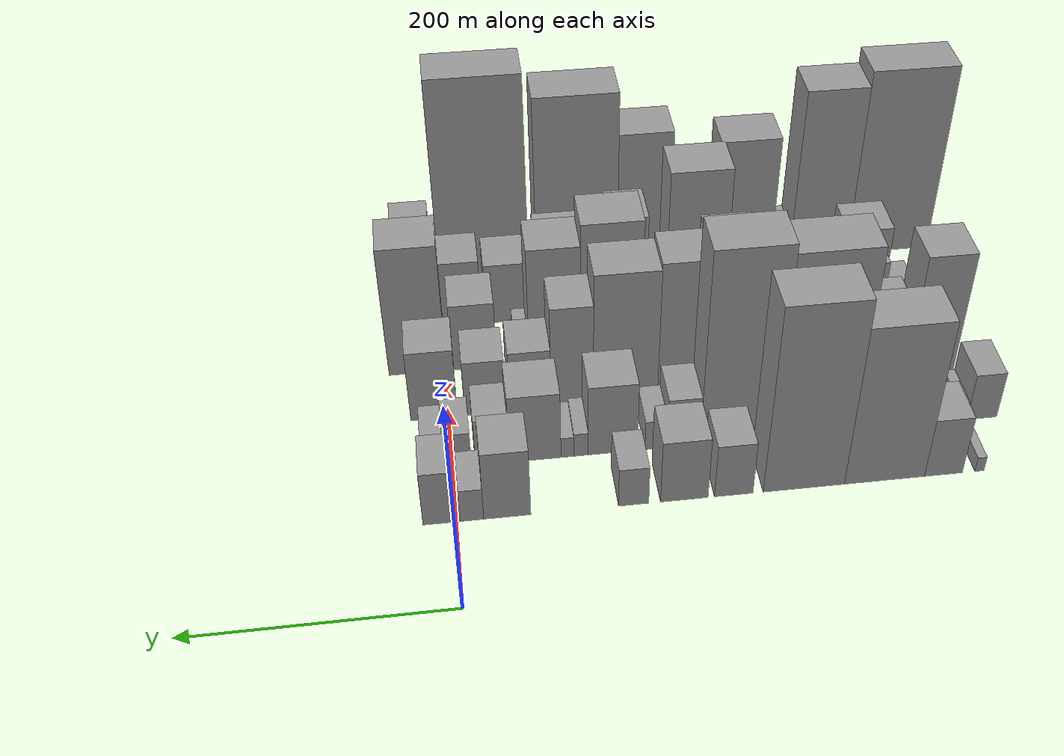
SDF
<sdf version="1.6">
 <world name="default">
  <model name="building_17">
   <static>1</static>
   <pose>100.0000 -403.8971 0 0.000000 0.000000 0.000000</pose>
   <link name="link">
    <pose>0 0 7.50 0 0 0</pose>
    <collision name="collision"><geometry><box><size>40.0000 7.2782 15.0000</size></box></geometry></collision>
    <visual name="visual">
     <cast_shadows>0</cast_shadows>
     <geometry><box><size>40.0000 7.2782 15.0000</size></box></geometry>
     <material>
      <script>
       <uri>model://grey_wall/materials/scripts</uri>
       <uri>model://grey_wall/materials/textures</uri>
       <name>vrc/grey_wall</name>
      </script>
     </material>
    </visual>
   </link>
  </model>
  <model name="building_18">
   <static>1</static>
   <pose>100.0000 -375.1844 0 0.000000 0.000000 0.000000</pose>
   <link name="link">
    <pose>0 0 30.00 0 0 0</pose>
    <collision name="collision"><geometry><box><size>40.0000 30.1471 60.0000</size></box></geometry></collision>
    <visual name="visual">
     <cast_shadows>0</cast_shadows>
     <geometry><box><size>40.0000 30.1471 60.0000</size></box></geometry>
     <material>
      <script>
       <uri>model://grey_wall/materials/scripts</uri>
       <uri>model://grey_wall/materials/textures</uri>
       <name>vrc/grey_wall</name>
      </script>
     </material>
    </visual>
   </link>
  </model>
  <model name="building_19">
   <static>1</static>
   <pose>100.0000 -328.5099 0 0.000000 0.000000 0.000000</pose>
   <link name="link">
    <pose>0 0 79.50 0 0 0</pose>
    <collision name="collision"><geometry><box><size>40.0000 63.2020 159.0000</size></box></geometry></collision>
    <visual name="visual">
     <cast_shadows>0</cast_shadows>
     <geometry><box><size>40.0000 63.2020 159.0000</size></box></geometry>
     <material>
      <script>
       <uri>model://grey_wall/materials/scripts</uri>
       <uri>model://grey_wall/materials/textures</uri>
       <name>vrc/grey_wall</name>
      </script>
     </material>
    </visual>
   </link>
  </model>
  <model name="building_20">
   <static>1</static>
   <pose>100.0000 -265.2148 0 0.000000 0.000000 0.000000</pose>
   <link name="link">
    <pose>0 0 93.00 0 0 0</pose>
    <collision name="collision"><geometry><box><size>40.0000 63.3882 186.0000</size></box></geometry></collision>
    <visual name="visual">
     <cast_shadows>0</cast_shadows>
     <geometry><box><size>40.0000 63.3882 186.0000</size></box></geometry>
     <material>
      <script>
       <uri>model://grey_wall/materials/scripts</uri>
       <uri>model://grey_wall/materials/textures</uri>
       <name>vrc/grey_wall</name>
      </script>
     </material>
    </visual>
   </link>
  </model>
  <model name="building_21">
   <static>1</static>
   <pose>100.0000 -210.6596 0 0.000000 0.000000 0.000000</pose>
   <link name="link">
    <pose>0 0 27.00 0 0 0</pose>
    <collision name="collision"><geometry><box><size>40.0000 29.7221 54.0000</size></box></geometry></collision>
    <visual name="visual">
     <cast_shadows>0</cast_shadows>
     <geometry><box><size>40.0000 29.7221 54.0000</size></box></geometry>
     <material>
      <script>
       <uri>model://grey_wall/materials/scripts</uri>
       <uri>model://grey_wall/materials/textures</uri>
       <name>vrc/grey_wall</name>
      </script>
     </material>
    </visual>
   </link>
  </model>
  <model name="building_22">
   <static>1</static>
   <pose>100.0000 -172.5500 0 0.000000 0.000000 0.000000</pose>
   <link name="link">
    <pose>0 0 31.50 0 0 0</pose>
    <collision name="collision"><geometry><box><size>40.0000 36.4971 63.0000</size></box></geometry></collision>
    <visual name="visual">
     <cast_shadows>0</cast_shadows>
     <geometry><box><size>40.0000 36.4971 63.0000</size></box></geometry>
     <material>
      <script>
       <uri>model://grey_wall/materials/scripts</uri>
       <uri>model://grey_wall/materials/textures</uri>
       <name>vrc/grey_wall</name>
      </script>
     </material>
    </visual>
   </link>
  </model>
  <model name="building_23">
   <static>1</static>
   <pose>100.0000 -133.8058 0 0.000000 0.000000 0.000000</pose>
   <link name="link">
    <pose>0 0 19.50 0 0 0</pose>
    <collision name="collision"><geometry><box><size>40.0000 22.9913 39.0000</size></box></geometry></collision>
    <visual name="visual">
     <cast_shadows>0</cast_shadows>
     <geometry><box><size>40.0000 22.9913 39.0000</size></box></geometry>
     <material>
      <script>
       <uri>model://grey_wall/materials/scripts</uri>
       <uri>model://grey_wall/materials/textures</uri>
       <name>vrc/grey_wall</name>
      </script>
     </material>
    </visual>
   </link>
  </model>
  <model name="building_24">
   <static>1</static>
   <pose>100.0000 -38.3105 0 0.000000 0.000000 0.000000</pose>
   <link name="link">
    <pose>0 0 34.50 0 0 0</pose>
    <collision name="collision"><geometry><box><size>40.0000 35.3331 69.0000</size></box></geometry></collision>
    <visual name="visual">
     <cast_shadows>0</cast_shadows>
     <geometry><box><size>40.0000 35.3331 69.0000</size></box></geometry>
     <material>
      <script>
       <uri>model://grey_wall/materials/scripts</uri>
       <uri>model://grey_wall/materials/textures</uri>
       <name>vrc/grey_wall</name>
      </script>
     </material>
    </visual>
   </link>
  </model>
  <model name="building_25">
   <static>1</static>
   <pose>100.0000 -11.7626 0 0.000000 0.000000 0.000000</pose>
   <link name="link">
    <pose>0 0 16.50 0 0 0</pose>
    <collision name="collision"><geometry><box><size>40.0000 17.7626 33.0000</size></box></geometry></collision>
    <visual name="visual">
     <cast_shadows>0</cast_shadows>
     <geometry><box><size>40.0000 17.7626 33.0000</size></box></geometry>
     <material>
      <script>
       <uri>model://grey_wall/materials/scripts</uri>
       <uri>model://grey_wall/materials/textures</uri>
       <name>vrc/grey_wall</name>
      </script>
     </material>
    </visual>
   </link>
  </model>
  <model name="building_26">
   <static>1</static>
   <pose>100.0000 10.8010 0 0.000000 0.000000 0.000000</pose>
   <link name="link">
    <pose>0 0 27.00 0 0 0</pose>
    <collision name="collision"><geometry><box><size>40.0000 27.3646 54.0000</size></box></geometry></collision>
    <visual name="visual">
     <cast_shadows>0</cast_shadows>
     <geometry><box><size>40.0000 27.3646 54.0000</size></box></geometry>
     <material>
      <script>
       <uri>model://grey_wall/materials/scripts</uri>
       <uri>model://grey_wall/materials/textures</uri>
       <name>vrc/grey_wall</name>
      </script>
     </material>
    </visual>
   </link>
  </model>
  <model name="building_65">
   <static>1</static>
   <pose>155.0000 -424.7836 0 0.000000 0.000000 0.000000</pose>
   <link name="link">
    <pose>0 0 24.00 0 0 0</pose>
    <collision name="collision"><geometry><box><size>40.0000 24.6631 48.0000</size></box></geometry></collision>
    <visual name="visual">
     <cast_shadows>0</cast_shadows>
     <geometry><box><size>40.0000 24.6631 48.0000</size></box></geometry>
     <material>
      <script>
       <uri>model://grey_wall/materials/scripts</uri>
       <uri>model://grey_wall/materials/textures</uri>
       <name>vrc/grey_wall</name>
      </script>
     </material>
    </visual>
   </link>
  </model>
  <model name="building_66">
   <static>1</static>
   <pose>155.0000 -408.0593 0 0.000000 0.000000 0.000000</pose>
   <link name="link">
    <pose>0 0 9.00 0 0 0</pose>
    <collision name="collision"><geometry><box><size>40.0000 8.7856 18.0000</size></box></geometry></collision>
    <visual name="visual">
     <cast_shadows>0</cast_shadows>
     <geometry><box><size>40.0000 8.7856 18.0000</size></box></geometry>
     <material>
      <script>
       <uri>model://grey_wall/materials/scripts</uri>
       <uri>model://grey_wall/materials/textures</uri>
       <name>vrc/grey_wall</name>
      </script>
     </material>
    </visual>
   </link>
  </model>
  <model name="building_67">
   <static>1</static>
   <pose>155.0000 -386.0575 0 0.000000 0.000000 0.000000</pose>
   <link name="link">
    <pose>0 0 15.00 0 0 0</pose>
    <collision name="collision"><geometry><box><size>40.0000 17.2179 30.0000</size></box></geometry></collision>
    <visual name="visual">
     <cast_shadows>0</cast_shadows>
     <geometry><box><size>40.0000 17.2179 30.0000</size></box></geometry>
     <material>
      <script>
       <uri>model://grey_wall/materials/scripts</uri>
       <uri>model://grey_wall/materials/textures</uri>
       <name>vrc/grey_wall</name>
      </script>
     </material>
    </visual>
   </link>
  </model>
  <model name="building_68">
   <static>1</static>
   <pose>155.0000 -348.2010 0 0.000000 0.000000 0.000000</pose>
   <link name="link">
    <pose>0 0 37.50 0 0 0</pose>
    <collision name="collision"><geometry><box><size>40.0000 38.4952 75.0000</size></box></geometry></collision>
    <visual name="visual">
     <cast_shadows>0</cast_shadows>
     <geometry><box><size>40.0000 38.4952 75.0000</size></box></geometry>
     <material>
      <script>
       <uri>model://grey_wall/materials/scripts</uri>
       <uri>model://grey_wall/materials/textures</uri>
       <name>vrc/grey_wall</name>
      </script>
     </material>
    </visual>
   </link>
  </model>
  <model name="building_69">
   <static>1</static>
   <pose>155.0000 -325.0655 0 0.000000 0.000000 0.000000</pose>
   <link name="link">
    <pose>0 0 9.00 0 0 0</pose>
    <collision name="collision"><geometry><box><size>40.0000 7.7756 18.0000</size></box></geometry></collision>
    <visual name="visual">
     <cast_shadows>0</cast_shadows>
     <geometry><box><size>40.0000 7.7756 18.0000</size></box></geometry>
     <material>
      <script>
       <uri>model://grey_wall/materials/scripts</uri>
       <uri>model://grey_wall/materials/textures</uri>
       <name>vrc/grey_wall</name>
      </script>
     </material>
    </visual>
   </link>
  </model>
  <model name="building_70">
   <static>1</static>
   <pose>155.0000 -288.4502 0 0.000000 0.000000 0.000000</pose>
   <link name="link">
    <pose>0 0 93.00 0 0 0</pose>
    <collision name="collision"><geometry><box><size>40.0000 65.4550 186.0000</size></box></geometry></collision>
    <visual name="visual">
     <cast_shadows>0</cast_shadows>
     <geometry><box><size>40.0000 65.4550 186.0000</size></box></geometry>
     <material>
      <script>
       <uri>model://grey_wall/materials/scripts</uri>
       <uri>model://grey_wall/materials/textures</uri>
       <name>vrc/grey_wall</name>
      </script>
     </material>
    </visual>
   </link>
  </model>
  <model name="building_71">
   <static>1</static>
   <pose>155.0000 -225.3385 0 0.000000 0.000000 0.000000</pose>
   <link name="link">
    <pose>0 0 97.50 0 0 0</pose>
    <collision name="collision"><geometry><box><size>40.0000 60.7685 195.0000</size></box></geometry></collision>
    <visual name="visual">
     <cast_shadows>0</cast_shadows>
     <geometry><box><size>40.0000 60.7685 195.0000</size></box></geometry>
     <material>
      <script>
       <uri>model://grey_wall/materials/scripts</uri>
       <uri>model://grey_wall/materials/textures</uri>
       <name>vrc/grey_wall</name>
      </script>
     </material>
    </visual>
   </link>
  </model>
  <model name="building_72">
   <static>1</static>
   <pose>155.0000 -181.8668 0 0.000000 0.000000 0.000000</pose>
   <link name="link">
    <pose>0 0 25.50 0 0 0</pose>
    <collision name="collision"><geometry><box><size>40.0000 26.1749 51.0000</size></box></geometry></collision>
    <visual name="visual">
     <cast_shadows>0</cast_shadows>
     <geometry><box><size>40.0000 26.1749 51.0000</size></box></geometry>
     <material>
      <script>
       <uri>model://grey_wall/materials/scripts</uri>
       <uri>model://grey_wall/materials/textures</uri>
       <name>vrc/grey_wall</name>
      </script>
     </material>
    </visual>
   </link>
  </model>
  <model name="building_73">
   <static>1</static>
   <pose>155.0000 -159.9413 0 0.000000 0.000000 0.000000</pose>
   <link name="link">
    <pose>0 0 15.00 0 0 0</pose>
    <collision name="collision"><geometry><box><size>40.0000 17.6762 30.0000</size></box></geometry></collision>
    <visual name="visual">
     <cast_shadows>0</cast_shadows>
     <geometry><box><size>40.0000 17.6762 30.0000</size></box></geometry>
     <material>
      <script>
       <uri>model://grey_wall/materials/scripts</uri>
       <uri>model://grey_wall/materials/textures</uri>
       <name>vrc/grey_wall</name>
      </script>
     </material>
    </visual>
   </link>
  </model>
  <model name="building_74">
   <static>1</static>
   <pose>155.0000 -125.7221 0 0.000000 0.000000 0.000000</pose>
   <link name="link">
    <pose>0 0 36.00 0 0 0</pose>
    <collision name="collision"><geometry><box><size>40.0000 38.7620 72.0000</size></box></geometry></collision>
    <visual name="visual">
     <cast_shadows>0</cast_shadows>
     <geometry><box><size>40.0000 38.7620 72.0000</size></box></geometry>
     <material>
      <script>
       <uri>model://grey_wall/materials/scripts</uri>
       <uri>model://grey_wall/materials/textures</uri>
       <name>vrc/grey_wall</name>
      </script>
     </material>
    </visual>
   </link>
  </model>
  <model name="building_75">
   <static>1</static>
   <pose>155.0000 -100.6961 0 0.000000 0.000000 0.000000</pose>
   <link name="link">
    <pose>0 0 12.00 0 0 0</pose>
    <collision name="collision"><geometry><box><size>40.0000 11.2900 24.0000</size></box></geometry></collision>
    <visual name="visual">
     <cast_shadows>0</cast_shadows>
     <geometry><box><size>40.0000 11.2900 24.0000</size></box></geometry>
     <material>
      <script>
       <uri>model://grey_wall/materials/scripts</uri>
       <uri>model://grey_wall/materials/textures</uri>
       <name>vrc/grey_wall</name>
      </script>
     </material>
    </visual>
   </link>
  </model>
  <model name="building_76">
   <static>1</static>
   <pose>155.0000 -89.9721 0 0.000000 0.000000 0.000000</pose>
   <link name="link">
    <pose>0 0 10.50 0 0 0</pose>
    <collision name="collision"><geometry><box><size>40.0000 10.1580 21.0000</size></box></geometry></collision>
    <visual name="visual">
     <cast_shadows>0</cast_shadows>
     <geometry><box><size>40.0000 10.1580 21.0000</size></box></geometry>
     <material>
      <script>
       <uri>model://grey_wall/materials/scripts</uri>
       <uri>model://grey_wall/materials/textures</uri>
       <name>vrc/grey_wall</name>
      </script>
     </material>
    </visual>
   </link>
  </model>
  <model name="building_77">
   <static>1</static>
   <pose>155.0000 -64.7002 0 0.000000 0.000000 0.000000</pose>
   <link name="link">
    <pose>0 0 34.50 0 0 0</pose>
    <collision name="collision"><geometry><box><size>40.0000 40.3858 69.0000</size></box></geometry></collision>
    <visual name="visual">
     <cast_shadows>0</cast_shadows>
     <geometry><box><size>40.0000 40.3858 69.0000</size></box></geometry>
     <material>
      <script>
       <uri>model://grey_wall/materials/scripts</uri>
       <uri>model://grey_wall/materials/textures</uri>
       <name>vrc/grey_wall</name>
      </script>
     </material>
    </visual>
   </link>
  </model>
  <model name="building_78">
   <static>1</static>
   <pose>155.0000 -31.3387 0 0.000000 0.000000 0.000000</pose>
   <link name="link">
    <pose>0 0 24.00 0 0 0</pose>
    <collision name="collision"><geometry><box><size>40.0000 26.3372 48.0000</size></box></geometry></collision>
    <visual name="visual">
     <cast_shadows>0</cast_shadows>
     <geometry><box><size>40.0000 26.3372 48.0000</size></box></geometry>
     <material>
      <script>
       <uri>model://grey_wall/materials/scripts</uri>
       <uri>model://grey_wall/materials/textures</uri>
       <name>vrc/grey_wall</name>
      </script>
     </material>
    </visual>
   </link>
  </model>
  <model name="building_79">
   <static>1</static>
   <pose>155.0000 -4.5127 0 0.000000 0.000000 0.000000</pose>
   <link name="link">
    <pose>0 0 18.00 0 0 0</pose>
    <collision name="collision"><geometry><box><size>40.0000 21.3148 36.0000</size></box></geometry></collision>
    <visual name="visual">
     <cast_shadows>0</cast_shadows>
     <geometry><box><size>40.0000 21.3148 36.0000</size></box></geometry>
     <material>
      <script>
       <uri>model://grey_wall/materials/scripts</uri>
       <uri>model://grey_wall/materials/textures</uri>
       <name>vrc/grey_wall</name>
      </script>
     </material>
    </visual>
   </link>
  </model>
  <model name="building_80">
   <static>1</static>
   <pose>155.0000 14.5444 0 0.000000 0.000000 0.000000</pose>
   <link name="link">
    <pose>0 0 15.00 0 0 0</pose>
    <collision name="collision"><geometry><box><size>40.0000 16.7994 30.0000</size></box></geometry></collision>
    <visual name="visual">
     <cast_shadows>0</cast_shadows>
     <geometry><box><size>40.0000 16.7994 30.0000</size></box></geometry>
     <material>
      <script>
       <uri>model://grey_wall/materials/scripts</uri>
       <uri>model://grey_wall/materials/textures</uri>
       <name>vrc/grey_wall</name>
      </script>
     </material>
    </visual>
   </link>
  </model>
  <model name="building_118">
   <static>1</static>
   <pose>210.0000 -398.7886 0 0.000000 0.000000 0.000000</pose>
   <link name="link">
    <pose>0 0 63.00 0 0 0</pose>
    <collision name="collision"><geometry><box><size>40.0000 39.9221 126.0000</size></box></geometry></collision>
    <visual name="visual">
     <cast_shadows>0</cast_shadows>
     <geometry><box><size>40.0000 39.9221 126.0000</size></box></geometry>
     <material>
      <script>
       <uri>model://grey_wall/materials/scripts</uri>
       <uri>model://grey_wall/materials/textures</uri>
       <name>vrc/grey_wall</name>
      </script>
     </material>
    </visual>
   </link>
  </model>
  <model name="building_119">
   <static>1</static>
   <pose>210.0000 -355.4312 0 0.000000 0.000000 0.000000</pose>
   <link name="link">
    <pose>0 0 37.50 0 0 0</pose>
    <collision name="collision"><geometry><box><size>40.0000 40.7927 75.0000</size></box></geometry></collision>
    <visual name="visual">
     <cast_shadows>0</cast_shadows>
     <geometry><box><size>40.0000 40.7927 75.0000</size></box></geometry>
     <material>
      <script>
       <uri>model://grey_wall/materials/scripts</uri>
       <uri>model://grey_wall/materials/textures</uri>
       <name>vrc/grey_wall</name>
      </script>
     </material>
    </visual>
   </link>
  </model>
  <model name="building_120">
   <static>1</static>
   <pose>210.0000 -307.5753 0 0.000000 0.000000 0.000000</pose>
   <link name="link">
    <pose>0 0 54.00 0 0 0</pose>
    <collision name="collision"><geometry><box><size>40.0000 42.9193 108.0000</size></box></geometry></collision>
    <visual name="visual">
     <cast_shadows>0</cast_shadows>
     <geometry><box><size>40.0000 42.9193 108.0000</size></box></geometry>
     <material>
      <script>
       <uri>model://grey_wall/materials/scripts</uri>
       <uri>model://grey_wall/materials/textures</uri>
       <name>vrc/grey_wall</name>
      </script>
     </material>
    </visual>
   </link>
  </model>
  <model name="building_121">
   <static>1</static>
   <pose>210.0000 -265.8573 0 0.000000 0.000000 0.000000</pose>
   <link name="link">
    <pose>0 0 55.50 0 0 0</pose>
    <collision name="collision"><geometry><box><size>40.0000 40.5167 111.0000</size></box></geometry></collision>
    <visual name="visual">
     <cast_shadows>0</cast_shadows>
     <geometry><box><size>40.0000 40.5167 111.0000</size></box></geometry>
     <material>
      <script>
       <uri>model://grey_wall/materials/scripts</uri>
       <uri>model://grey_wall/materials/textures</uri>
       <name>vrc/grey_wall</name>
      </script>
     </material>
    </visual>
   </link>
  </model>
  <model name="building_122">
   <static>1</static>
   <pose>210.0000 -233.8029 0 0.000000 0.000000 0.000000</pose>
   <link name="link">
    <pose>0 0 22.50 0 0 0</pose>
    <collision name="collision"><geometry><box><size>40.0000 23.5922 45.0000</size></box></geometry></collision>
    <visual name="visual">
     <cast_shadows>0</cast_shadows>
     <geometry><box><size>40.0000 23.5922 45.0000</size></box></geometry>
     <material>
      <script>
       <uri>model://grey_wall/materials/scripts</uri>
       <uri>model://grey_wall/materials/textures</uri>
       <name>vrc/grey_wall</name>
      </script>
     </material>
    </visual>
   </link>
  </model>
  <model name="building_123">
   <static>1</static>
   <pose>210.0000 -195.9886 0 0.000000 0.000000 0.000000</pose>
   <link name="link">
    <pose>0 0 70.50 0 0 0</pose>
    <collision name="collision"><geometry><box><size>40.0000 52.0364 141.0000</size></box></geometry></collision>
    <visual name="visual">
     <cast_shadows>0</cast_shadows>
     <geometry><box><size>40.0000 52.0364 141.0000</size></box></geometry>
     <material>
      <script>
       <uri>model://grey_wall/materials/scripts</uri>
       <uri>model://grey_wall/materials/textures</uri>
       <name>vrc/grey_wall</name>
      </script>
     </material>
    </visual>
   </link>
  </model>
  <model name="building_124">
   <static>1</static>
   <pose>210.0000 -143.7323 0 0.000000 0.000000 0.000000</pose>
   <link name="link">
    <pose>0 0 67.50 0 0 0</pose>
    <collision name="collision"><geometry><box><size>40.0000 52.4762 135.0000</size></box></geometry></collision>
    <visual name="visual">
     <cast_shadows>0</cast_shadows>
     <geometry><box><size>40.0000 52.4762 135.0000</size></box></geometry>
     <material>
      <script>
       <uri>model://grey_wall/materials/scripts</uri>
       <uri>model://grey_wall/materials/textures</uri>
       <name>vrc/grey_wall</name>
      </script>
     </material>
    </visual>
   </link>
  </model>
  <model name="building_125">
   <static>1</static>
   <pose>210.0000 -100.3800 0 0.000000 0.000000 0.000000</pose>
   <link name="link">
    <pose>0 0 52.50 0 0 0</pose>
    <collision name="collision"><geometry><box><size>40.0000 34.2284 105.0000</size></box></geometry></collision>
    <visual name="visual">
     <cast_shadows>0</cast_shadows>
     <geometry><box><size>40.0000 34.2284 105.0000</size></box></geometry>
     <material>
      <script>
       <uri>model://grey_wall/materials/scripts</uri>
       <uri>model://grey_wall/materials/textures</uri>
       <name>vrc/grey_wall</name>
      </script>
     </material>
    </visual>
   </link>
  </model>
  <model name="building_126">
   <static>1</static>
   <pose>210.0000 -66.3722 0 0.000000 0.000000 0.000000</pose>
   <link name="link">
    <pose>0 0 31.50 0 0 0</pose>
    <collision name="collision"><geometry><box><size>40.0000 33.7871 63.0000</size></box></geometry></collision>
    <visual name="visual">
     <cast_shadows>0</cast_shadows>
     <geometry><box><size>40.0000 33.7871 63.0000</size></box></geometry>
     <material>
      <script>
       <uri>model://grey_wall/materials/scripts</uri>
       <uri>model://grey_wall/materials/textures</uri>
       <name>vrc/grey_wall</name>
      </script>
     </material>
    </visual>
   </link>
  </model>
  <model name="building_127">
   <static>1</static>
   <pose>210.0000 -29.9133 0 0.000000 0.000000 0.000000</pose>
   <link name="link">
    <pose>0 0 28.50 0 0 0</pose>
    <collision name="collision"><geometry><box><size>40.0000 33.1308 57.0000</size></box></geometry></collision>
    <visual name="visual">
     <cast_shadows>0</cast_shadows>
     <geometry><box><size>40.0000 33.1308 57.0000</size></box></geometry>
     <material>
      <script>
       <uri>model://grey_wall/materials/scripts</uri>
       <uri>model://grey_wall/materials/textures</uri>
       <name>vrc/grey_wall</name>
      </script>
     </material>
    </visual>
   </link>
  </model>
  <model name="building_128">
   <static>1</static>
   <pose>210.0000 11.3127 0 0.000000 0.000000 0.000000</pose>
   <link name="link">
    <pose>0 0 36.00 0 0 0</pose>
    <collision name="collision"><geometry><box><size>40.0000 37.3212 72.0000</size></box></geometry></collision>
    <visual name="visual">
     <cast_shadows>0</cast_shadows>
     <geometry><box><size>40.0000 37.3212 72.0000</size></box></geometry>
     <material>
      <script>
       <uri>model://grey_wall/materials/scripts</uri>
       <uri>model://grey_wall/materials/textures</uri>
       <name>vrc/grey_wall</name>
      </script>
     </material>
    </visual>
   </link>
  </model>
  <model name="building_168">
   <static>1</static>
   <pose>265.0000 -419.7354 0 0.000000 0.000000 0.000000</pose>
   <link name="link">
    <pose>0 0 33.00 0 0 0</pose>
    <collision name="collision"><geometry><box><size>40.0000 33.6044 66.0000</size></box></geometry></collision>
    <visual name="visual">
     <cast_shadows>0</cast_shadows>
     <geometry><box><size>40.0000 33.6044 66.0000</size></box></geometry>
     <material>
      <script>
       <uri>model://grey_wall/materials/scripts</uri>
       <uri>model://grey_wall/materials/textures</uri>
       <name>vrc/grey_wall</name>
      </script>
     </material>
    </visual>
   </link>
  </model>
  <model name="building_169">
   <static>1</static>
   <pose>265.0000 -387.5065 0 0.000000 0.000000 0.000000</pose>
   <link name="link">
    <pose>0 0 22.50 0 0 0</pose>
    <collision name="collision"><geometry><box><size>40.0000 22.8533 45.0000</size></box></geometry></collision>
    <visual name="visual">
     <cast_shadows>0</cast_shadows>
     <geometry><box><size>40.0000 22.8533 45.0000</size></box></geometry>
     <material>
      <script>
       <uri>model://grey_wall/materials/scripts</uri>
       <uri>model://grey_wall/materials/textures</uri>
       <name>vrc/grey_wall</name>
      </script>
     </material>
    </visual>
   </link>
  </model>
  <model name="building_170">
   <static>1</static>
   <pose>265.0000 -348.4466 0 0.000000 0.000000 0.000000</pose>
   <link name="link">
    <pose>0 0 39.00 0 0 0</pose>
    <collision name="collision"><geometry><box><size>40.0000 45.2665 78.0000</size></box></geometry></collision>
    <visual name="visual">
     <cast_shadows>0</cast_shadows>
     <geometry><box><size>40.0000 45.2665 78.0000</size></box></geometry>
     <material>
      <script>
       <uri>model://grey_wall/materials/scripts</uri>
       <uri>model://grey_wall/materials/textures</uri>
       <name>vrc/grey_wall</name>
      </script>
     </material>
    </visual>
   </link>
  </model>
  <model name="building_171">
   <static>1</static>
   <pose>265.0000 -316.0258 0 0.000000 0.000000 0.000000</pose>
   <link name="link">
    <pose>0 0 19.50 0 0 0</pose>
    <collision name="collision"><geometry><box><size>40.0000 19.5751 39.0000</size></box></geometry></collision>
    <visual name="visual">
     <cast_shadows>0</cast_shadows>
     <geometry><box><size>40.0000 19.5751 39.0000</size></box></geometry>
     <material>
      <script>
       <uri>model://grey_wall/materials/scripts</uri>
       <uri>model://grey_wall/materials/textures</uri>
       <name>vrc/grey_wall</name>
      </script>
     </material>
    </visual>
   </link>
  </model>
  <model name="building_172">
   <static>1</static>
   <pose>265.0000 -296.9270 0 0.000000 0.000000 0.000000</pose>
   <link name="link">
    <pose>0 0 16.50 0 0 0</pose>
    <collision name="collision"><geometry><box><size>40.0000 18.6226 33.0000</size></box></geometry></collision>
    <visual name="visual">
     <cast_shadows>0</cast_shadows>
     <geometry><box><size>40.0000 18.6226 33.0000</size></box></geometry>
     <material>
      <script>
       <uri>model://grey_wall/materials/scripts</uri>
       <uri>model://grey_wall/materials/textures</uri>
       <name>vrc/grey_wall</name>
      </script>
     </material>
    </visual>
   </link>
  </model>
  <model name="building_173">
   <static>1</static>
   <pose>265.0000 -269.7869 0 0.000000 0.000000 0.000000</pose>
   <link name="link">
    <pose>0 0 19.50 0 0 0</pose>
    <collision name="collision"><geometry><box><size>40.0000 19.6577 39.0000</size></box></geometry></collision>
    <visual name="visual">
     <cast_shadows>0</cast_shadows>
     <geometry><box><size>40.0000 19.6577 39.0000</size></box></geometry>
     <material>
      <script>
       <uri>model://grey_wall/materials/scripts</uri>
       <uri>model://grey_wall/materials/textures</uri>
       <name>vrc/grey_wall</name>
      </script>
     </material>
    </visual>
   </link>
  </model>
  <model name="building_174">
   <static>1</static>
   <pose>265.0000 -239.1069 0 0.000000 0.000000 0.000000</pose>
   <link name="link">
    <pose>0 0 55.50 0 0 0</pose>
    <collision name="collision"><geometry><box><size>40.0000 41.7022 111.0000</size></box></geometry></collision>
    <visual name="visual">
     <cast_shadows>0</cast_shadows>
     <geometry><box><size>40.0000 41.7022 111.0000</size></box></geometry>
     <material>
      <script>
       <uri>model://grey_wall/materials/scripts</uri>
       <uri>model://grey_wall/materials/textures</uri>
       <name>vrc/grey_wall</name>
      </script>
     </material>
    </visual>
   </link>
  </model>
  <model name="building_175">
   <static>1</static>
   <pose>265.0000 -197.7909 0 0.000000 0.000000 0.000000</pose>
   <link name="link">
    <pose>0 0 39.00 0 0 0</pose>
    <collision name="collision"><geometry><box><size>40.0000 40.9298 78.0000</size></box></geometry></collision>
    <visual name="visual">
     <cast_shadows>0</cast_shadows>
     <geometry><box><size>40.0000 40.9298 78.0000</size></box></geometry>
     <material>
      <script>
       <uri>model://grey_wall/materials/scripts</uri>
       <uri>model://grey_wall/materials/textures</uri>
       <name>vrc/grey_wall</name>
      </script>
     </material>
    </visual>
   </link>
  </model>
  <model name="building_176">
   <static>1</static>
   <pose>265.0000 -171.2518 0 0.000000 0.000000 0.000000</pose>
   <link name="link">
    <pose>0 0 13.50 0 0 0</pose>
    <collision name="collision"><geometry><box><size>40.0000 12.1485 27.0000</size></box></geometry></collision>
    <visual name="visual">
     <cast_shadows>0</cast_shadows>
     <geometry><box><size>40.0000 12.1485 27.0000</size></box></geometry>
     <material>
      <script>
       <uri>model://grey_wall/materials/scripts</uri>
       <uri>model://grey_wall/materials/textures</uri>
       <name>vrc/grey_wall</name>
      </script>
     </material>
    </visual>
   </link>
  </model>
  <model name="building_177">
   <static>1</static>
   <pose>265.0000 -139.5790 0 0.000000 0.000000 0.000000</pose>
   <link name="link">
    <pose>0 0 70.50 0 0 0</pose>
    <collision name="collision"><geometry><box><size>40.0000 51.1971 141.0000</size></box></geometry></collision>
    <visual name="visual">
     <cast_shadows>0</cast_shadows>
     <geometry><box><size>40.0000 51.1971 141.0000</size></box></geometry>
     <material>
      <script>
       <uri>model://grey_wall/materials/scripts</uri>
       <uri>model://grey_wall/materials/textures</uri>
       <name>vrc/grey_wall</name>
      </script>
     </material>
    </visual>
   </link>
  </model>
  <model name="building_178">
   <static>1</static>
   <pose>265.0000 -92.2448 0 0.000000 0.000000 0.000000</pose>
   <link name="link">
    <pose>0 0 60.00 0 0 0</pose>
    <collision name="collision"><geometry><box><size>40.0000 43.4713 120.0000</size></box></geometry></collision>
    <visual name="visual">
     <cast_shadows>0</cast_shadows>
     <geometry><box><size>40.0000 43.4713 120.0000</size></box></geometry>
     <material>
      <script>
       <uri>model://grey_wall/materials/scripts</uri>
       <uri>model://grey_wall/materials/textures</uri>
       <name>vrc/grey_wall</name>
      </script>
     </material>
    </visual>
   </link>
  </model>
  <model name="building_179">
   <static>1</static>
   <pose>265.0000 -64.8264 0 0.000000 0.000000 0.000000</pose>
   <link name="link">
    <pose>0 0 13.50 0 0 0</pose>
    <collision name="collision"><geometry><box><size>40.0000 11.3654 27.0000</size></box></geometry></collision>
    <visual name="visual">
     <cast_shadows>0</cast_shadows>
     <geometry><box><size>40.0000 11.3654 27.0000</size></box></geometry>
     <material>
      <script>
       <uri>model://grey_wall/materials/scripts</uri>
       <uri>model://grey_wall/materials/textures</uri>
       <name>vrc/grey_wall</name>
      </script>
     </material>
    </visual>
   </link>
  </model>
  <model name="building_180">
   <static>1</static>
   <pose>265.0000 -55.6859 0 0.000000 0.000000 0.000000</pose>
   <link name="link">
    <pose>0 0 7.50 0 0 0</pose>
    <collision name="collision"><geometry><box><size>40.0000 6.9157 15.0000</size></box></geometry></collision>
    <visual name="visual">
     <cast_shadows>0</cast_shadows>
     <geometry><box><size>40.0000 6.9157 15.0000</size></box></geometry>
     <material>
      <script>
       <uri>model://grey_wall/materials/scripts</uri>
       <uri>model://grey_wall/materials/textures</uri>
       <name>vrc/grey_wall</name>
      </script>
     </material>
    </visual>
   </link>
  </model>
  <model name="building_181">
   <static>1</static>
   <pose>265.0000 -24.7318 0 0.000000 0.000000 0.000000</pose>
   <link name="link">
    <pose>0 0 34.50 0 0 0</pose>
    <collision name="collision"><geometry><box><size>40.0000 36.9926 69.0000</size></box></geometry></collision>
    <visual name="visual">
     <cast_shadows>0</cast_shadows>
     <geometry><box><size>40.0000 36.9926 69.0000</size></box></geometry>
     <material>
      <script>
       <uri>model://grey_wall/materials/scripts</uri>
       <uri>model://grey_wall/materials/textures</uri>
       <name>vrc/grey_wall</name>
      </script>
     </material>
    </visual>
   </link>
  </model>
  <model name="building_182">
   <static>1</static>
   <pose>265.0000 22.4403 0 0.000000 0.000000 0.000000</pose>
   <link name="link">
    <pose>0 0 66.00 0 0 0</pose>
    <collision name="collision"><geometry><box><size>40.0000 47.3516 132.0000</size></box></geometry></collision>
    <visual name="visual">
     <cast_shadows>0</cast_shadows>
     <geometry><box><size>40.0000 47.3516 132.0000</size></box></geometry>
     <material>
      <script>
       <uri>model://grey_wall/materials/scripts</uri>
       <uri>model://grey_wall/materials/textures</uri>
       <name>vrc/grey_wall</name>
      </script>
     </material>
    </visual>
   </link>
  </model>
  <model name="building_218">
   <static>1</static>
   <pose>320.0000 -395.5539 0 0.000000 0.000000 0.000000</pose>
   <link name="link">
    <pose>0 0 7.50 0 0 0</pose>
    <collision name="collision"><geometry><box><size>40.0000 7.3294 15.0000</size></box></geometry></collision>
    <visual name="visual">
     <cast_shadows>0</cast_shadows>
     <geometry><box><size>40.0000 7.3294 15.0000</size></box></geometry>
     <material>
      <script>
       <uri>model://grey_wall/materials/scripts</uri>
       <uri>model://grey_wall/materials/textures</uri>
       <name>vrc/grey_wall</name>
      </script>
     </material>
    </visual>
   </link>
  </model>
  <model name="building_219">
   <static>1</static>
   <pose>320.0000 -371.5532 0 0.000000 0.000000 0.000000</pose>
   <link name="link">
    <pose>0 0 34.50 0 0 0</pose>
    <collision name="collision"><geometry><box><size>40.0000 40.6720 69.0000</size></box></geometry></collision>
    <visual name="visual">
     <cast_shadows>0</cast_shadows>
     <geometry><box><size>40.0000 40.6720 69.0000</size></box></geometry>
     <material>
      <script>
       <uri>model://grey_wall/materials/scripts</uri>
       <uri>model://grey_wall/materials/textures</uri>
       <name>vrc/grey_wall</name>
      </script>
     </material>
    </visual>
   </link>
  </model>
  <model name="building_220">
   <static>1</static>
   <pose>320.0000 -327.9449 0 0.000000 0.000000 0.000000</pose>
   <link name="link">
    <pose>0 0 24.00 0 0 0</pose>
    <collision name="collision"><geometry><box><size>40.0000 26.5446 48.0000</size></box></geometry></collision>
    <visual name="visual">
     <cast_shadows>0</cast_shadows>
     <geometry><box><size>40.0000 26.5446 48.0000</size></box></geometry>
     <material>
      <script>
       <uri>model://grey_wall/materials/scripts</uri>
       <uri>model://grey_wall/materials/textures</uri>
       <name>vrc/grey_wall</name>
      </script>
     </material>
    </visual>
   </link>
  </model>
  <model name="building_221">
   <static>1</static>
   <pose>320.0000 -309.5009 0 0.000000 0.000000 0.000000</pose>
   <link name="link">
    <pose>0 0 12.00 0 0 0</pose>
    <collision name="collision"><geometry><box><size>40.0000 10.3433 24.0000</size></box></geometry></collision>
    <visual name="visual">
     <cast_shadows>0</cast_shadows>
     <geometry><box><size>40.0000 10.3433 24.0000</size></box></geometry>
     <material>
      <script>
       <uri>model://grey_wall/materials/scripts</uri>
       <uri>model://grey_wall/materials/textures</uri>
       <name>vrc/grey_wall</name>
      </script>
     </material>
    </visual>
   </link>
  </model>
  <model name="building_222">
   <static>1</static>
   <pose>320.0000 -295.4226 0 0.000000 0.000000 0.000000</pose>
   <link name="link">
    <pose>0 0 16.50 0 0 0</pose>
    <collision name="collision"><geometry><box><size>40.0000 17.8132 33.0000</size></box></geometry></collision>
    <visual name="visual">
     <cast_shadows>0</cast_shadows>
     <geometry><box><size>40.0000 17.8132 33.0000</size></box></geometry>
     <material>
      <script>
       <uri>model://grey_wall/materials/scripts</uri>
       <uri>model://grey_wall/materials/textures</uri>
       <name>vrc/grey_wall</name>
      </script>
     </material>
    </visual>
   </link>
  </model>
  <model name="building_223">
   <static>1</static>
   <pose>320.0000 -269.0381 0 0.000000 0.000000 0.000000</pose>
   <link name="link">
    <pose>0 0 31.50 0 0 0</pose>
    <collision name="collision"><geometry><box><size>40.0000 34.9559 63.0000</size></box></geometry></collision>
    <visual name="visual">
     <cast_shadows>0</cast_shadows>
     <geometry><box><size>40.0000 34.9559 63.0000</size></box></geometry>
     <material>
      <script>
       <uri>model://grey_wall/materials/scripts</uri>
       <uri>model://grey_wall/materials/textures</uri>
       <name>vrc/grey_wall</name>
      </script>
     </material>
    </visual>
   </link>
  </model>
  <model name="building_224">
   <static>1</static>
   <pose>320.0000 -221.3047 0 0.000000 0.000000 0.000000</pose>
   <link name="link">
    <pose>0 0 72.00 0 0 0</pose>
    <collision name="collision"><geometry><box><size>40.0000 52.5107 144.0000</size></box></geometry></collision>
    <visual name="visual">
     <cast_shadows>0</cast_shadows>
     <geometry><box><size>40.0000 52.5107 144.0000</size></box></geometry>
     <material>
      <script>
       <uri>model://grey_wall/materials/scripts</uri>
       <uri>model://grey_wall/materials/textures</uri>
       <name>vrc/grey_wall</name>
      </script>
     </material>
    </visual>
   </link>
  </model>
  <model name="building_225">
   <static>1</static>
   <pose>320.0000 -181.5599 0 0.000000 0.000000 0.000000</pose>
   <link name="link">
    <pose>0 0 7.50 0 0 0</pose>
    <collision name="collision"><geometry><box><size>40.0000 6.9789 15.0000</size></box></geometry></collision>
    <visual name="visual">
     <cast_shadows>0</cast_shadows>
     <geometry><box><size>40.0000 6.9789 15.0000</size></box></geometry>
     <material>
      <script>
       <uri>model://grey_wall/materials/scripts</uri>
       <uri>model://grey_wall/materials/textures</uri>
       <name>vrc/grey_wall</name>
      </script>
     </material>
    </visual>
   </link>
  </model>
  <model name="building_226">
   <static>1</static>
   <pose>320.0000 -161.2256 0 0.000000 0.000000 0.000000</pose>
   <link name="link">
    <pose>0 0 51.00 0 0 0</pose>
    <collision name="collision"><geometry><box><size>40.0000 33.6898 102.0000</size></box></geometry></collision>
    <visual name="visual">
     <cast_shadows>0</cast_shadows>
     <geometry><box><size>40.0000 33.6898 102.0000</size></box></geometry>
     <material>
      <script>
       <uri>model://grey_wall/materials/scripts</uri>
       <uri>model://grey_wall/materials/textures</uri>
       <name>vrc/grey_wall</name>
      </script>
     </material>
    </visual>
   </link>
  </model>
  <model name="building_227">
   <static>1</static>
   <pose>320.0000 -135.0049 0 0.000000 0.000000 0.000000</pose>
   <link name="link">
    <pose>0 0 16.50 0 0 0</pose>
    <collision name="collision"><geometry><box><size>40.0000 18.7515 33.0000</size></box></geometry></collision>
    <visual name="visual">
     <cast_shadows>0</cast_shadows>
     <geometry><box><size>40.0000 18.7515 33.0000</size></box></geometry>
     <material>
      <script>
       <uri>model://grey_wall/materials/scripts</uri>
       <uri>model://grey_wall/materials/textures</uri>
       <name>vrc/grey_wall</name>
      </script>
     </material>
    </visual>
   </link>
  </model>
  <model name="building_228">
   <static>1</static>
   <pose>320.0000 -104.3248 0 0.000000 0.000000 0.000000</pose>
   <link name="link">
    <pose>0 0 42.00 0 0 0</pose>
    <collision name="collision"><geometry><box><size>40.0000 42.6087 84.0000</size></box></geometry></collision>
    <visual name="visual">
     <cast_shadows>0</cast_shadows>
     <geometry><box><size>40.0000 42.6087 84.0000</size></box></geometry>
     <material>
      <script>
       <uri>model://grey_wall/materials/scripts</uri>
       <uri>model://grey_wall/materials/textures</uri>
       <name>vrc/grey_wall</name>
      </script>
     </material>
    </visual>
   </link>
  </model>
  <model name="building_229">
   <static>1</static>
   <pose>320.0000 -56.2215 0 0.000000 0.000000 0.000000</pose>
   <link name="link">
    <pose>0 0 31.50 0 0 0</pose>
    <collision name="collision"><geometry><box><size>40.0000 35.5978 63.0000</size></box></geometry></collision>
    <visual name="visual">
     <cast_shadows>0</cast_shadows>
     <geometry><box><size>40.0000 35.5978 63.0000</size></box></geometry>
     <material>
      <script>
       <uri>model://grey_wall/materials/scripts</uri>
       <uri>model://grey_wall/materials/textures</uri>
       <name>vrc/grey_wall</name>
      </script>
     </material>
    </visual>
   </link>
  </model>
  <model name="building_230">
   <static>1</static>
   <pose>320.0000 -16.6225 0 0.000000 0.000000 0.000000</pose>
   <link name="link">
    <pose>0 0 34.50 0 0 0</pose>
    <collision name="collision"><geometry><box><size>40.0000 35.6003 69.0000</size></box></geometry></collision>
    <visual name="visual">
     <cast_shadows>0</cast_shadows>
     <geometry><box><size>40.0000 35.6003 69.0000</size></box></geometry>
     <material>
      <script>
       <uri>model://grey_wall/materials/scripts</uri>
       <uri>model://grey_wall/materials/textures</uri>
       <name>vrc/grey_wall</name>
      </script>
     </material>
    </visual>
   </link>
  </model>
  <model name="building_263">
   <static>1</static>
   <pose>375.0000 -410.4360 0 0.000000 0.000000 0.000000</pose>
   <link name="link">
    <pose>0 0 96.00 0 0 0</pose>
    <collision name="collision"><geometry><box><size>40.0000 75.3907 192.0000</size></box></geometry></collision>
    <visual name="visual">
     <cast_shadows>0</cast_shadows>
     <geometry><box><size>40.0000 75.3907 192.0000</size></box></geometry>
     <material>
      <script>
       <uri>model://grey_wall/materials/scripts</uri>
       <uri>model://grey_wall/materials/textures</uri>
       <name>vrc/grey_wall</name>
      </script>
     </material>
    </visual>
   </link>
  </model>
  <model name="building_264">
   <static>1</static>
   <pose>375.0000 -345.7568 0 0.000000 0.000000 0.000000</pose>
   <link name="link">
    <pose>0 0 88.50 0 0 0</pose>
    <collision name="collision"><geometry><box><size>40.0000 53.9678 177.0000</size></box></geometry></collision>
    <visual name="visual">
     <cast_shadows>0</cast_shadows>
     <geometry><box><size>40.0000 53.9678 177.0000</size></box></geometry>
     <material>
      <script>
       <uri>model://grey_wall/materials/scripts</uri>
       <uri>model://grey_wall/materials/textures</uri>
       <name>vrc/grey_wall</name>
      </script>
     </material>
    </visual>
   </link>
  </model>
  <model name="building_265">
   <static>1</static>
   <pose>375.0000 -310.0453 0 0.000000 0.000000 0.000000</pose>
   <link name="link">
    <pose>0 0 15.00 0 0 0</pose>
    <collision name="collision"><geometry><box><size>40.0000 17.4552 30.0000</size></box></geometry></collision>
    <visual name="visual">
     <cast_shadows>0</cast_shadows>
     <geometry><box><size>40.0000 17.4552 30.0000</size></box></geometry>
     <material>
      <script>
       <uri>model://grey_wall/materials/scripts</uri>
       <uri>model://grey_wall/materials/textures</uri>
       <name>vrc/grey_wall</name>
      </script>
     </material>
    </visual>
   </link>
  </model>
  <model name="building_266">
   <static>1</static>
   <pose>375.0000 -275.0609 0 0.000000 0.000000 0.000000</pose>
   <link name="link">
    <pose>0 0 66.00 0 0 0</pose>
    <collision name="collision"><geometry><box><size>40.0000 52.5134 132.0000</size></box></geometry></collision>
    <visual name="visual">
     <cast_shadows>0</cast_shadows>
     <geometry><box><size>40.0000 52.5134 132.0000</size></box></geometry>
     <material>
      <script>
       <uri>model://grey_wall/materials/scripts</uri>
       <uri>model://grey_wall/materials/textures</uri>
       <name>vrc/grey_wall</name>
      </script>
     </material>
    </visual>
   </link>
  </model>
  <model name="building_267">
   <static>1</static>
   <pose>375.0000 -228.1510 0 0.000000 0.000000 0.000000</pose>
   <link name="link">
    <pose>0 0 37.50 0 0 0</pose>
    <collision name="collision"><geometry><box><size>40.0000 41.3065 75.0000</size></box></geometry></collision>
    <visual name="visual">
     <cast_shadows>0</cast_shadows>
     <geometry><box><size>40.0000 41.3065 75.0000</size></box></geometry>
     <material>
      <script>
       <uri>model://grey_wall/materials/scripts</uri>
       <uri>model://grey_wall/materials/textures</uri>
       <name>vrc/grey_wall</name>
      </script>
     </material>
    </visual>
   </link>
  </model>
  <model name="building_268">
   <static>1</static>
   <pose>375.0000 -183.9173 0 0.000000 0.000000 0.000000</pose>
   <link name="link">
    <pose>0 0 73.50 0 0 0</pose>
    <collision name="collision"><geometry><box><size>40.0000 47.1610 147.0000</size></box></geometry></collision>
    <visual name="visual">
     <cast_shadows>0</cast_shadows>
     <geometry><box><size>40.0000 47.1610 147.0000</size></box></geometry>
     <material>
      <script>
       <uri>model://grey_wall/materials/scripts</uri>
       <uri>model://grey_wall/materials/textures</uri>
       <name>vrc/grey_wall</name>
      </script>
     </material>
    </visual>
   </link>
  </model>
  <model name="building_269">
   <static>1</static>
   <pose>375.0000 -123.9649 0 0.000000 0.000000 0.000000</pose>
   <link name="link">
    <pose>0 0 94.50 0 0 0</pose>
    <collision name="collision"><geometry><box><size>40.0000 72.7438 189.0000</size></box></geometry></collision>
    <visual name="visual">
     <cast_shadows>0</cast_shadows>
     <geometry><box><size>40.0000 72.7438 189.0000</size></box></geometry>
     <material>
      <script>
       <uri>model://grey_wall/materials/scripts</uri>
       <uri>model://grey_wall/materials/textures</uri>
       <name>vrc/grey_wall</name>
      </script>
     </material>
    </visual>
   </link>
  </model>
  <model name="building_270">
   <static>1</static>
   <pose>375.0000 -40.8064 0 0.000000 0.000000 0.000000</pose>
   <link name="link">
    <pose>0 0 106.50 0 0 0</pose>
    <collision name="collision"><geometry><box><size>40.0000 79.5730 213.0000</size></box></geometry></collision>
    <visual name="visual">
     <cast_shadows>0</cast_shadows>
     <geometry><box><size>40.0000 79.5730 213.0000</size></box></geometry>
     <material>
      <script>
       <uri>model://grey_wall/materials/scripts</uri>
       <uri>model://grey_wall/materials/textures</uri>
       <name>vrc/grey_wall</name>
      </script>
     </material>
    </visual>
   </link>
  </model>
  <model name="building_271">
   <static>1</static>
   <pose>375.0000 21.6259 0 0.000000 0.000000 0.000000</pose>
   <link name="link">
    <pose>0 0 33.00 0 0 0</pose>
    <collision name="collision"><geometry><box><size>40.0000 33.2917 66.0000</size></box></geometry></collision>
    <visual name="visual">
     <cast_shadows>0</cast_shadows>
     <geometry><box><size>40.0000 33.2917 66.0000</size></box></geometry>
     <material>
      <script>
       <uri>model://grey_wall/materials/scripts</uri>
       <uri>model://grey_wall/materials/textures</uri>
       <name>vrc/grey_wall</name>
      </script>
     </material>
    </visual>
   </link>
  </model>
 </world>
</sdf>
